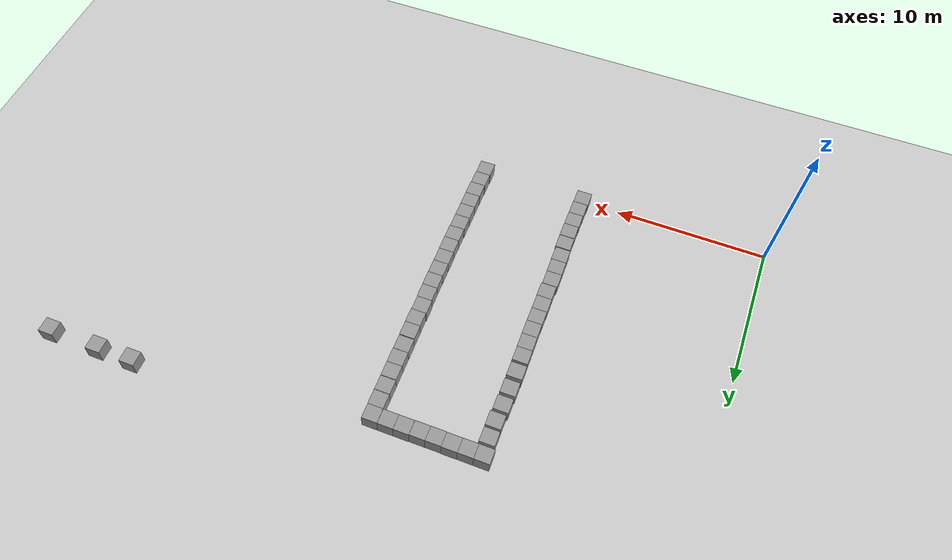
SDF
<sdf version="1.4">
 <world name="default">
  <model name="ground_plane">
   <static>1</static>
   <link name="link">
    <collision name="collision">
     <geometry><plane><normal>0 0 1</normal><size>100 100</size></plane></geometry>
     <surface><friction><ode><mu>100</mu><mu2>50</mu2></ode></friction></surface>
    </collision>
    <visual name="visual">
     <cast_shadows>0</cast_shadows>
     <geometry><plane><normal>0 0 1</normal><size>100 100</size></plane></geometry>
     <material>
      <script><uri>file://media/materials/scripts/gazebo.material</uri><name>Gazebo/Grey</name></script>
     </material>
    </visual>
    <velocity_decay><linear>0</linear><angular>0</angular></velocity_decay>
   </link>
  </model>
  <model name="unit_box_2">
   <pose>12.5062 0.446914 0.5 0 0 -0.000451</pose>
   <link name="link">
    <inertial>
     <mass>1</mass>
     <inertia><ixx>1</ixx><ixy>0</ixy><ixz>0</ixz><iyy>1</iyy><iyz>0</iyz><izz>1</izz></inertia>
    </inertial>
    <collision name="collision"><geometry><box><size>1 1 1</size></box></geometry></collision>
    <visual name="visual">
     <geometry><box><size>1 1 1</size></box></geometry>
     <material>
      <script><uri>file://media/materials/scripts/gazebo.material</uri><name>Gazebo/Grey</name></script>
     </material>
    </visual>
    <velocity_decay><linear>0</linear><angular>0</angular></velocity_decay>
   </link>
   <static>0</static>
  </model>
  <model name="unit_box_27">
   <pose>12.4867 20.4985 0.5 0 -0 0.000241</pose>
   <link name="link">
    <inertial>
     <mass>1</mass>
     <inertia><ixx>1</ixx><ixy>0</ixy><ixz>0</ixz><iyy>1</iyy><iyz>0</iyz><izz>1</izz></inertia>
    </inertial>
    <collision name="collision"><geometry><box><size>1 1 1</size></box></geometry></collision>
    <visual name="visual">
     <geometry><box><size>1 1 1</size></box></geometry>
     <material>
      <script><uri>file://media/materials/scripts/gazebo.material</uri><name>Gazebo/Grey</name></script>
     </material>
    </visual>
    <velocity_decay><linear>0</linear><angular>0</angular></velocity_decay>
   </link>
   <static>0</static>
  </model>
  <model name="unit_box_28">
   <pose>19.4998 0.427452 0.5 0 0 -6.1e-05</pose>
   <link name="link">
    <inertial>
     <mass>1</mass>
     <inertia><ixx>1</ixx><ixy>0</ixy><ixz>0</ixz><iyy>1</iyy><iyz>0</iyz><izz>1</izz></inertia>
    </inertial>
    <collision name="collision"><geometry><box><size>1 1 1</size></box></geometry></collision>
    <visual name="visual">
     <geometry><box><size>1 1 1</size></box></geometry>
     <material>
      <script><uri>file://media/materials/scripts/gazebo.material</uri><name>Gazebo/Grey</name></script>
     </material>
    </visual>
    <velocity_decay><linear>0</linear><angular>0</angular></velocity_decay>
   </link>
   <static>0</static>
  </model>
  <model name="unit_box_29">
   <pose>19.5022 20.5077 0.5 0 -0 2.5e-05</pose>
   <link name="link">
    <inertial>
     <mass>1</mass>
     <inertia><ixx>1</ixx><ixy>0</ixy><ixz>0</ixz><iyy>1</iyy><iyz>0</iyz><izz>1</izz></inertia>
    </inertial>
    <collision name="collision"><geometry><box><size>1 1 1</size></box></geometry></collision>
    <visual name="visual">
     <geometry><box><size>1 1 1</size></box></geometry>
     <material>
      <script><uri>file://media/materials/scripts/gazebo.material</uri><name>Gazebo/Grey</name></script>
     </material>
    </visual>
    <velocity_decay><linear>0</linear><angular>0</angular></velocity_decay>
   </link>
   <static>0</static>
  </model>
  <model name="unit_box_30">
   <pose>12.5309 1.44691 0.5 0 0 -0.00045</pose>
   <link name="link">
    <inertial>
     <mass>1</mass>
     <inertia><ixx>1</ixx><ixy>0</ixy><ixz>0</ixz><iyy>1</iyy><iyz>0</iyz><izz>1</izz></inertia>
    </inertial>
    <collision name="collision"><geometry><box><size>1 1 1</size></box></geometry></collision>
    <visual name="visual">
     <geometry><box><size>1 1 1</size></box></geometry>
     <material>
      <script><uri>file://media/materials/scripts/gazebo.material</uri><name>Gazebo/Grey</name></script>
     </material>
    </visual>
    <velocity_decay><linear>0</linear><angular>0</angular></velocity_decay>
   </link>
   <static>0</static>
  </model>
  <model name="unit_box_31">
   <pose>12.543 2.44871 0.5 0 -0 8e-06</pose>
   <link name="link">
    <inertial>
     <mass>1</mass>
     <inertia><ixx>1</ixx><ixy>0</ixy><ixz>0</ixz><iyy>1</iyy><iyz>0</iyz><izz>1</izz></inertia>
    </inertial>
    <collision name="collision"><geometry><box><size>1 1 1</size></box></geometry></collision>
    <visual name="visual">
     <geometry><box><size>1 1 1</size></box></geometry>
     <material>
      <script><uri>file://media/materials/scripts/gazebo.material</uri><name>Gazebo/Grey</name></script>
     </material>
    </visual>
    <velocity_decay><linear>0</linear><angular>0</angular></velocity_decay>
   </link>
   <static>0</static>
  </model>
  <model name="unit_box_32">
   <pose>12.5574 3.44871 0.5 0 -0 5e-06</pose>
   <link name="link">
    <inertial>
     <mass>1</mass>
     <inertia><ixx>1</ixx><ixy>0</ixy><ixz>0</ixz><iyy>1</iyy><iyz>0</iyz><izz>1</izz></inertia>
    </inertial>
    <collision name="collision"><geometry><box><size>1 1 1</size></box></geometry></collision>
    <visual name="visual">
     <geometry><box><size>1 1 1</size></box></geometry>
     <material>
      <script><uri>file://media/materials/scripts/gazebo.material</uri><name>Gazebo/Grey</name></script>
     </material>
    </visual>
    <velocity_decay><linear>0</linear><angular>0</angular></velocity_decay>
   </link>
   <static>0</static>
  </model>
  <model name="unit_box_33">
   <pose>12.5538 4.46862 0.5 0 -0 6e-06</pose>
   <link name="link">
    <inertial>
     <mass>1</mass>
     <inertia><ixx>1</ixx><ixy>0</ixy><ixz>0</ixz><iyy>1</iyy><iyz>0</iyz><izz>1</izz></inertia>
    </inertial>
    <collision name="collision"><geometry><box><size>1 1 1</size></box></geometry></collision>
    <visual name="visual">
     <geometry><box><size>1 1 1</size></box></geometry>
     <material>
      <script><uri>file://media/materials/scripts/gazebo.material</uri><name>Gazebo/Grey</name></script>
     </material>
    </visual>
    <velocity_decay><linear>0</linear><angular>0</angular></velocity_decay>
   </link>
   <static>0</static>
  </model>
  <model name="unit_box_34">
   <pose>12.5053 5.51432 0.5 0 -0 0.000187</pose>
   <link name="link">
    <inertial>
     <mass>1</mass>
     <inertia><ixx>1</ixx><ixy>0</ixy><ixz>0</ixz><iyy>1</iyy><iyz>0</iyz><izz>1</izz></inertia>
    </inertial>
    <collision name="collision"><geometry><box><size>1 1 1</size></box></geometry></collision>
    <visual name="visual">
     <geometry><box><size>1 1 1</size></box></geometry>
     <material>
      <script><uri>file://media/materials/scripts/gazebo.material</uri><name>Gazebo/Grey</name></script>
     </material>
    </visual>
    <velocity_decay><linear>0</linear><angular>0</angular></velocity_decay>
   </link>
   <static>0</static>
  </model>
  <model name="unit_box_35">
   <pose>12.4918 6.51502 0.5 0 -0 0.00017</pose>
   <link name="link">
    <inertial>
     <mass>1</mass>
     <inertia><ixx>1</ixx><ixy>0</ixy><ixz>0</ixz><iyy>1</iyy><iyz>0</iyz><izz>1</izz></inertia>
    </inertial>
    <collision name="collision"><geometry><box><size>1 1 1</size></box></geometry></collision>
    <visual name="visual">
     <geometry><box><size>1 1 1</size></box></geometry>
     <material>
      <script><uri>file://media/materials/scripts/gazebo.material</uri><name>Gazebo/Grey</name></script>
     </material>
    </visual>
    <velocity_decay><linear>0</linear><angular>0</angular></velocity_decay>
   </link>
   <static>0</static>
  </model>
  <model name="unit_box_36">
   <pose>12.4784 7.5163 0.5 0 -0 7.4e-05</pose>
   <link name="link">
    <inertial>
     <mass>1</mass>
     <inertia><ixx>1</ixx><ixy>0</ixy><ixz>0</ixz><iyy>1</iyy><iyz>0</iyz><izz>1</izz></inertia>
    </inertial>
    <collision name="collision"><geometry><box><size>1 1 1</size></box></geometry></collision>
    <visual name="visual">
     <geometry><box><size>1 1 1</size></box></geometry>
     <material>
      <script><uri>file://media/materials/scripts/gazebo.material</uri><name>Gazebo/Grey</name></script>
     </material>
    </visual>
    <velocity_decay><linear>0</linear><angular>0</angular></velocity_decay>
   </link>
   <static>0</static>
  </model>
  <model name="unit_box_37">
   <pose>12.5302 8.53127 0.5 0 -0 0.000439</pose>
   <link name="link">
    <inertial>
     <mass>1</mass>
     <inertia><ixx>1</ixx><ixy>0</ixy><ixz>0</ixz><iyy>1</iyy><iyz>0</iyz><izz>1</izz></inertia>
    </inertial>
    <collision name="collision"><geometry><box><size>1 1 1</size></box></geometry></collision>
    <visual name="visual">
     <geometry><box><size>1 1 1</size></box></geometry>
     <material>
      <script><uri>file://media/materials/scripts/gazebo.material</uri><name>Gazebo/Grey</name></script>
     </material>
    </visual>
    <velocity_decay><linear>0</linear><angular>0</angular></velocity_decay>
   </link>
   <static>0</static>
  </model>
  <model name="unit_box_38">
   <pose>12.5171 9.53128 0.5 0 -0 0.000436</pose>
   <link name="link">
    <inertial>
     <mass>1</mass>
     <inertia><ixx>1</ixx><ixy>0</ixy><ixz>0</ixz><iyy>1</iyy><iyz>0</iyz><izz>1</izz></inertia>
    </inertial>
    <collision name="collision"><geometry><box><size>1 1 1</size></box></geometry></collision>
    <visual name="visual">
     <geometry><box><size>1 1 1</size></box></geometry>
     <material>
      <script><uri>file://media/materials/scripts/gazebo.material</uri><name>Gazebo/Grey</name></script>
     </material>
    </visual>
    <velocity_decay><linear>0</linear><angular>0</angular></velocity_decay>
   </link>
   <static>0</static>
  </model>
  <model name="unit_box_39">
   <pose>12.5257 10.5313 0.5 0 -0 0.000397</pose>
   <link name="link">
    <inertial>
     <mass>1</mass>
     <inertia><ixx>1</ixx><ixy>0</ixy><ixz>0</ixz><iyy>1</iyy><iyz>0</iyz><izz>1</izz></inertia>
    </inertial>
    <collision name="collision"><geometry><box><size>1 1 1</size></box></geometry></collision>
    <visual name="visual">
     <geometry><box><size>1 1 1</size></box></geometry>
     <material>
      <script><uri>file://media/materials/scripts/gazebo.material</uri><name>Gazebo/Grey</name></script>
     </material>
    </visual>
    <velocity_decay><linear>0</linear><angular>0</angular></velocity_decay>
   </link>
   <static>0</static>
  </model>
  <model name="unit_box_40">
   <pose>12.5333 11.5313 0.5 0 -0 0.000398</pose>
   <link name="link">
    <inertial>
     <mass>1</mass>
     <inertia><ixx>1</ixx><ixy>0</ixy><ixz>0</ixz><iyy>1</iyy><iyz>0</iyz><izz>1</izz></inertia>
    </inertial>
    <collision name="collision"><geometry><box><size>1 1 1</size></box></geometry></collision>
    <visual name="visual">
     <geometry><box><size>1 1 1</size></box></geometry>
     <material>
      <script><uri>file://media/materials/scripts/gazebo.material</uri><name>Gazebo/Grey</name></script>
     </material>
    </visual>
    <velocity_decay><linear>0</linear><angular>0</angular></velocity_decay>
   </link>
   <static>0</static>
  </model>
  <model name="unit_box_41">
   <pose>12.5184 12.5313 0.5 0 -0 0.000369</pose>
   <link name="link">
    <inertial>
     <mass>1</mass>
     <inertia><ixx>1</ixx><ixy>0</ixy><ixz>0</ixz><iyy>1</iyy><iyz>0</iyz><izz>1</izz></inertia>
    </inertial>
    <collision name="collision"><geometry><box><size>1 1 1</size></box></geometry></collision>
    <visual name="visual">
     <geometry><box><size>1 1 1</size></box></geometry>
     <material>
      <script><uri>file://media/materials/scripts/gazebo.material</uri><name>Gazebo/Grey</name></script>
     </material>
    </visual>
    <velocity_decay><linear>0</linear><angular>0</angular></velocity_decay>
   </link>
   <static>0</static>
  </model>
  <model name="unit_box_42">
   <pose>12.5039 13.5313 0.5 0 -0 0.000354</pose>
   <link name="link">
    <inertial>
     <mass>1</mass>
     <inertia><ixx>1</ixx><ixy>0</ixy><ixz>0</ixz><iyy>1</iyy><iyz>0</iyz><izz>1</izz></inertia>
    </inertial>
    <collision name="collision"><geometry><box><size>1 1 1</size></box></geometry></collision>
    <visual name="visual">
     <geometry><box><size>1 1 1</size></box></geometry>
     <material>
      <script><uri>file://media/materials/scripts/gazebo.material</uri><name>Gazebo/Grey</name></script>
     </material>
    </visual>
    <velocity_decay><linear>0</linear><angular>0</angular></velocity_decay>
   </link>
   <static>0</static>
  </model>
  <model name="unit_box_43">
   <pose>12.488 14.6714 0.5 0 -0 0.000276</pose>
   <link name="link">
    <inertial>
     <mass>1</mass>
     <inertia><ixx>1</ixx><ixy>0</ixy><ixz>0</ixz><iyy>1</iyy><iyz>0</iyz><izz>1</izz></inertia>
    </inertial>
    <collision name="collision"><geometry><box><size>1 1 1</size></box></geometry></collision>
    <visual name="visual">
     <geometry><box><size>1 1 1</size></box></geometry>
     <material>
      <script><uri>file://media/materials/scripts/gazebo.material</uri><name>Gazebo/Grey</name></script>
     </material>
    </visual>
    <velocity_decay><linear>0</linear><angular>0</angular></velocity_decay>
   </link>
   <static>0</static>
  </model>
  <model name="unit_box_44">
   <pose>12.4951 15.89 0.5 0 -0 0.000272</pose>
   <link name="link">
    <inertial>
     <mass>1</mass>
     <inertia><ixx>1</ixx><ixy>0</ixy><ixz>0</ixz><iyy>1</iyy><iyz>0</iyz><izz>1</izz></inertia>
    </inertial>
    <collision name="collision"><geometry><box><size>1 1 1</size></box></geometry></collision>
    <visual name="visual">
     <geometry><box><size>1 1 1</size></box></geometry>
     <material>
      <script><uri>file://media/materials/scripts/gazebo.material</uri><name>Gazebo/Grey</name></script>
     </material>
    </visual>
    <velocity_decay><linear>0</linear><angular>0</angular></velocity_decay>
   </link>
   <static>0</static>
  </model>
  <model name="unit_box_45">
   <pose>12.5264 17.0697 0.5 0 -0 0.000256</pose>
   <link name="link">
    <inertial>
     <mass>1</mass>
     <inertia><ixx>1</ixx><ixy>0</ixy><ixz>0</ixz><iyy>1</iyy><iyz>0</iyz><izz>1</izz></inertia>
    </inertial>
    <collision name="collision"><geometry><box><size>1 1 1</size></box></geometry></collision>
    <visual name="visual">
     <geometry><box><size>1 1 1</size></box></geometry>
     <material>
      <script><uri>file://media/materials/scripts/gazebo.material</uri><name>Gazebo/Grey</name></script>
     </material>
    </visual>
    <velocity_decay><linear>0</linear><angular>0</angular></velocity_decay>
   </link>
   <static>0</static>
  </model>
  <model name="unit_box_46">
   <pose>12.601 18.2279 0.5 0 -0 0.00025</pose>
   <link name="link">
    <inertial>
     <mass>1</mass>
     <inertia><ixx>1</ixx><ixy>0</ixy><ixz>0</ixz><iyy>1</iyy><iyz>0</iyz><izz>1</izz></inertia>
    </inertial>
    <collision name="collision"><geometry><box><size>1 1 1</size></box></geometry></collision>
    <visual name="visual">
     <geometry><box><size>1 1 1</size></box></geometry>
     <material>
      <script><uri>file://media/materials/scripts/gazebo.material</uri><name>Gazebo/Grey</name></script>
     </material>
    </visual>
    <velocity_decay><linear>0</linear><angular>0</angular></velocity_decay>
   </link>
   <static>0</static>
  </model>
  <model name="unit_box_47">
   <pose>12.5881 19.348 0.5 0 -0 0.000217</pose>
   <link name="link">
    <inertial>
     <mass>1</mass>
     <inertia><ixx>1</ixx><ixy>0</ixy><ixz>0</ixz><iyy>1</iyy><iyz>0</iyz><izz>1</izz></inertia>
    </inertial>
    <collision name="collision"><geometry><box><size>1 1 1</size></box></geometry></collision>
    <visual name="visual">
     <geometry><box><size>1 1 1</size></box></geometry>
     <material>
      <script><uri>file://media/materials/scripts/gazebo.material</uri><name>Gazebo/Grey</name></script>
     </material>
    </visual>
    <velocity_decay><linear>0</linear><angular>0</angular></velocity_decay>
   </link>
   <static>0</static>
  </model>
  <model name="unit_box_49">
   <pose>13.4871 20.4955 0.5 0 -0 -0.000126</pose>
   <link name="link">
    <inertial>
     <mass>1</mass>
     <inertia><ixx>1</ixx><ixy>0</ixy><ixz>0</ixz><iyy>1</iyy><iyz>0</iyz><izz>1</izz></inertia>
    </inertial>
    <collision name="collision"><geometry><box><size>1 1 1</size></box></geometry></collision>
    <visual name="visual">
     <geometry><box><size>1 1 1</size></box></geometry>
     <material>
      <script><uri>file://media/materials/scripts/gazebo.material</uri><name>Gazebo/Grey</name></script>
     </material>
    </visual>
    <velocity_decay><linear>0</linear><angular>0</angular></velocity_decay>
   </link>
   <static>0</static>
  </model>
  <model name="unit_box_50">
   <pose>14.4871 20.5036 0.5 -0 -0 -0.000149</pose>
   <link name="link">
    <inertial>
     <mass>1</mass>
     <inertia><ixx>1</ixx><ixy>0</ixy><ixz>0</ixz><iyy>1</iyy><iyz>0</iyz><izz>1</izz></inertia>
    </inertial>
    <collision name="collision"><geometry><box><size>1 1 1</size></box></geometry></collision>
    <visual name="visual">
     <geometry><box><size>1 1 1</size></box></geometry>
     <material>
      <script><uri>file://media/materials/scripts/gazebo.material</uri><name>Gazebo/Grey</name></script>
     </material>
    </visual>
    <velocity_decay><linear>0</linear><angular>0</angular></velocity_decay>
   </link>
   <static>0</static>
  </model>
  <model name="unit_box_51">
   <pose>15.4871 20.4852 0.5 0 0 -0.000205</pose>
   <link name="link">
    <inertial>
     <mass>1</mass>
     <inertia><ixx>1</ixx><ixy>0</ixy><ixz>0</ixz><iyy>1</iyy><iyz>0</iyz><izz>1</izz></inertia>
    </inertial>
    <collision name="collision"><geometry><box><size>1 1 1</size></box></geometry></collision>
    <visual name="visual">
     <geometry><box><size>1 1 1</size></box></geometry>
     <material>
      <script><uri>file://media/materials/scripts/gazebo.material</uri><name>Gazebo/Grey</name></script>
     </material>
    </visual>
    <velocity_decay><linear>0</linear><angular>0</angular></velocity_decay>
   </link>
   <static>0</static>
  </model>
  <model name="unit_box_52">
   <pose>16.4873 20.4903 0.5 -0 -0 -0.000244</pose>
   <link name="link">
    <inertial>
     <mass>1</mass>
     <inertia><ixx>1</ixx><ixy>0</ixy><ixz>0</ixz><iyy>1</iyy><iyz>0</iyz><izz>1</izz></inertia>
    </inertial>
    <collision name="collision"><geometry><box><size>1 1 1</size></box></geometry></collision>
    <visual name="visual">
     <geometry><box><size>1 1 1</size></box></geometry>
     <material>
      <script><uri>file://media/materials/scripts/gazebo.material</uri><name>Gazebo/Grey</name></script>
     </material>
    </visual>
    <velocity_decay><linear>0</linear><angular>0</angular></velocity_decay>
   </link>
   <static>0</static>
  </model>
  <model name="unit_box_53">
   <pose>17.4923 20.5065 0.5 0 -0 9.2e-05</pose>
   <link name="link">
    <inertial>
     <mass>1</mass>
     <inertia><ixx>1</ixx><ixy>0</ixy><ixz>0</ixz><iyy>1</iyy><iyz>0</iyz><izz>1</izz></inertia>
    </inertial>
    <collision name="collision"><geometry><box><size>1 1 1</size></box></geometry></collision>
    <visual name="visual">
     <geometry><box><size>1 1 1</size></box></geometry>
     <material>
      <script><uri>file://media/materials/scripts/gazebo.material</uri><name>Gazebo/Grey</name></script>
     </material>
    </visual>
    <velocity_decay><linear>0</linear><angular>0</angular></velocity_decay>
   </link>
   <static>0</static>
  </model>
  <model name="unit_box_54">
   <pose>18.4924 20.5073 0.5 0 -0 9.3e-05</pose>
   <link name="link">
    <inertial>
     <mass>1</mass>
     <inertia><ixx>1</ixx><ixy>0</ixy><ixz>0</ixz><iyy>1</iyy><iyz>0</iyz><izz>1</izz></inertia>
    </inertial>
    <collision name="collision"><geometry><box><size>1 1 1</size></box></geometry></collision>
    <visual name="visual">
     <geometry><box><size>1 1 1</size></box></geometry>
     <material>
      <script><uri>file://media/materials/scripts/gazebo.material</uri><name>Gazebo/Grey</name></script>
     </material>
    </visual>
    <velocity_decay><linear>0</linear><angular>0</angular></velocity_decay>
   </link>
   <static>0</static>
  </model>
  <model name="unit_box_55">
   <pose>19.5184 19.5076 0.5 0 -0 2.5e-05</pose>
   <link name="link">
    <inertial>
     <mass>1</mass>
     <inertia><ixx>1</ixx><ixy>0</ixy><ixz>0</ixz><iyy>1</iyy><iyz>0</iyz><izz>1</izz></inertia>
    </inertial>
    <collision name="collision"><geometry><box><size>1 1 1</size></box></geometry></collision>
    <visual name="visual">
     <geometry><box><size>1 1 1</size></box></geometry>
     <material>
      <script><uri>file://media/materials/scripts/gazebo.material</uri><name>Gazebo/Grey</name></script>
     </material>
    </visual>
    <velocity_decay><linear>0</linear><angular>0</angular></velocity_decay>
   </link>
   <static>0</static>
  </model>
  <model name="unit_box_56">
   <pose>19.5187 18.4944 0.5 0 -0 0</pose>
   <link name="link">
    <inertial>
     <mass>1</mass>
     <inertia><ixx>1</ixx><ixy>0</ixy><ixz>0</ixz><iyy>1</iyy><iyz>0</iyz><izz>1</izz></inertia>
    </inertial>
    <collision name="collision"><geometry><box><size>1 1 1</size></box></geometry></collision>
    <visual name="visual">
     <geometry><box><size>1 1 1</size></box></geometry>
     <material>
      <script><uri>file://media/materials/scripts/gazebo.material</uri><name>Gazebo/Grey</name></script>
     </material>
    </visual>
    <velocity_decay><linear>0</linear><angular>0</angular></velocity_decay>
   </link>
   <static>0</static>
  </model>
  <model name="unit_box_57">
   <pose>19.5284 17.4709 0.5 0 -0 2.2e-05</pose>
   <link name="link">
    <inertial>
     <mass>1</mass>
     <inertia><ixx>1</ixx><ixy>0</ixy><ixz>0</ixz><iyy>1</iyy><iyz>0</iyz><izz>1</izz></inertia>
    </inertial>
    <collision name="collision"><geometry><box><size>1 1 1</size></box></geometry></collision>
    <visual name="visual">
     <geometry><box><size>1 1 1</size></box></geometry>
     <material>
      <script><uri>file://media/materials/scripts/gazebo.material</uri><name>Gazebo/Grey</name></script>
     </material>
    </visual>
    <velocity_decay><linear>0</linear><angular>0</angular></velocity_decay>
   </link>
   <static>0</static>
  </model>
  <model name="unit_box_58">
   <pose>19.5376 16.4709 0.5 0 -0 2.2e-05</pose>
   <link name="link">
    <inertial>
     <mass>1</mass>
     <inertia><ixx>1</ixx><ixy>0</ixy><ixz>0</ixz><iyy>1</iyy><iyz>0</iyz><izz>1</izz></inertia>
    </inertial>
    <collision name="collision"><geometry><box><size>1 1 1</size></box></geometry></collision>
    <visual name="visual">
     <geometry><box><size>1 1 1</size></box></geometry>
     <material>
      <script><uri>file://media/materials/scripts/gazebo.material</uri><name>Gazebo/Grey</name></script>
     </material>
    </visual>
    <velocity_decay><linear>0</linear><angular>0</angular></velocity_decay>
   </link>
   <static>0</static>
  </model>
  <model name="unit_box_59">
   <pose>19.5376 15.4691 0.5 0 -0 0</pose>
   <link name="link">
    <inertial>
     <mass>1</mass>
     <inertia><ixx>1</ixx><ixy>0</ixy><ixz>0</ixz><iyy>1</iyy><iyz>0</iyz><izz>1</izz></inertia>
    </inertial>
    <collision name="collision"><geometry><box><size>1 1 1</size></box></geometry></collision>
    <visual name="visual">
     <geometry><box><size>1 1 1</size></box></geometry>
     <material>
      <script><uri>file://media/materials/scripts/gazebo.material</uri><name>Gazebo/Grey</name></script>
     </material>
    </visual>
    <velocity_decay><linear>0</linear><angular>0</angular></velocity_decay>
   </link>
   <static>0</static>
  </model>
  <model name="unit_box_60">
   <pose>19.5533 14.4278 0.5 0 -0 0.000148</pose>
   <link name="link">
    <inertial>
     <mass>1</mass>
     <inertia><ixx>1</ixx><ixy>0</ixy><ixz>0</ixz><iyy>1</iyy><iyz>0</iyz><izz>1</izz></inertia>
    </inertial>
    <collision name="collision"><geometry><box><size>1 1 1</size></box></geometry></collision>
    <visual name="visual">
     <geometry><box><size>1 1 1</size></box></geometry>
     <material>
      <script><uri>file://media/materials/scripts/gazebo.material</uri><name>Gazebo/Grey</name></script>
     </material>
    </visual>
    <velocity_decay><linear>0</linear><angular>0</angular></velocity_decay>
   </link>
   <static>0</static>
  </model>
  <model name="unit_box_61">
   <pose>19.5634 13.4278 0.5 0 -0 0.000153</pose>
   <link name="link">
    <inertial>
     <mass>1</mass>
     <inertia><ixx>1</ixx><ixy>0</ixy><ixz>0</ixz><iyy>1</iyy><iyz>0</iyz><izz>1</izz></inertia>
    </inertial>
    <collision name="collision"><geometry><box><size>1 1 1</size></box></geometry></collision>
    <visual name="visual">
     <geometry><box><size>1 1 1</size></box></geometry>
     <material>
      <script><uri>file://media/materials/scripts/gazebo.material</uri><name>Gazebo/Grey</name></script>
     </material>
    </visual>
    <velocity_decay><linear>0</linear><angular>0</angular></velocity_decay>
   </link>
   <static>0</static>
  </model>
  <model name="unit_box_62">
   <pose>19.5357 12.4278 0.5 0 -0 0.000154</pose>
   <link name="link">
    <inertial>
     <mass>1</mass>
     <inertia><ixx>1</ixx><ixy>0</ixy><ixz>0</ixz><iyy>1</iyy><iyz>0</iyz><izz>1</izz></inertia>
    </inertial>
    <collision name="collision"><geometry><box><size>1 1 1</size></box></geometry></collision>
    <visual name="visual">
     <geometry><box><size>1 1 1</size></box></geometry>
     <material>
      <script><uri>file://media/materials/scripts/gazebo.material</uri><name>Gazebo/Grey</name></script>
     </material>
    </visual>
    <velocity_decay><linear>0</linear><angular>0</angular></velocity_decay>
   </link>
   <static>0</static>
  </model>
  <model name="unit_box_63">
   <pose>19.5713 11.4278 0.5 0 -0 0.000154</pose>
   <link name="link">
    <inertial>
     <mass>1</mass>
     <inertia><ixx>1</ixx><ixy>0</ixy><ixz>0</ixz><iyy>1</iyy><iyz>0</iyz><izz>1</izz></inertia>
    </inertial>
    <collision name="collision"><geometry><box><size>1 1 1</size></box></geometry></collision>
    <visual name="visual">
     <geometry><box><size>1 1 1</size></box></geometry>
     <material>
      <script><uri>file://media/materials/scripts/gazebo.material</uri><name>Gazebo/Grey</name></script>
     </material>
    </visual>
    <velocity_decay><linear>0</linear><angular>0</angular></velocity_decay>
   </link>
   <static>0</static>
  </model>
  <model name="unit_box_64">
   <pose>19.583 10.4278 0.5 0 -0 0.000159</pose>
   <link name="link">
    <inertial>
     <mass>1</mass>
     <inertia><ixx>1</ixx><ixy>0</ixy><ixz>0</ixz><iyy>1</iyy><iyz>0</iyz><izz>1</izz></inertia>
    </inertial>
    <collision name="collision"><geometry><box><size>1 1 1</size></box></geometry></collision>
    <visual name="visual">
     <geometry><box><size>1 1 1</size></box></geometry>
     <material>
      <script><uri>file://media/materials/scripts/gazebo.material</uri><name>Gazebo/Grey</name></script>
     </material>
    </visual>
    <velocity_decay><linear>0</linear><angular>0</angular></velocity_decay>
   </link>
   <static>0</static>
  </model>
  <model name="unit_box_65">
   <pose>19.5789 9.42774 0.5 0 -0 0.000185</pose>
   <link name="link">
    <inertial>
     <mass>1</mass>
     <inertia><ixx>1</ixx><ixy>0</ixy><ixz>0</ixz><iyy>1</iyy><iyz>0</iyz><izz>1</izz></inertia>
    </inertial>
    <collision name="collision"><geometry><box><size>1 1 1</size></box></geometry></collision>
    <visual name="visual">
     <geometry><box><size>1 1 1</size></box></geometry>
     <material>
      <script><uri>file://media/materials/scripts/gazebo.material</uri><name>Gazebo/Grey</name></script>
     </material>
    </visual>
    <velocity_decay><linear>0</linear><angular>0</angular></velocity_decay>
   </link>
   <static>0</static>
  </model>
  <model name="unit_box_66">
   <pose>19.5735 8.42773 0.5 0 -0 0.0002</pose>
   <link name="link">
    <inertial>
     <mass>1</mass>
     <inertia><ixx>1</ixx><ixy>0</ixy><ixz>0</ixz><iyy>1</iyy><iyz>0</iyz><izz>1</izz></inertia>
    </inertial>
    <collision name="collision"><geometry><box><size>1 1 1</size></box></geometry></collision>
    <visual name="visual">
     <geometry><box><size>1 1 1</size></box></geometry>
     <material>
      <script><uri>file://media/materials/scripts/gazebo.material</uri><name>Gazebo/Grey</name></script>
     </material>
    </visual>
    <velocity_decay><linear>0</linear><angular>0</angular></velocity_decay>
   </link>
   <static>0</static>
  </model>
  <model name="unit_box_67">
   <pose>19.5864 7.42772 0.5 0 -0 0.000225</pose>
   <link name="link">
    <inertial>
     <mass>1</mass>
     <inertia><ixx>1</ixx><ixy>0</ixy><ixz>0</ixz><iyy>1</iyy><iyz>0</iyz><izz>1</izz></inertia>
    </inertial>
    <collision name="collision"><geometry><box><size>1 1 1</size></box></geometry></collision>
    <visual name="visual">
     <geometry><box><size>1 1 1</size></box></geometry>
     <material>
      <script><uri>file://media/materials/scripts/gazebo.material</uri><name>Gazebo/Grey</name></script>
     </material>
    </visual>
    <velocity_decay><linear>0</linear><angular>0</angular></velocity_decay>
   </link>
   <static>0</static>
  </model>
  <model name="unit_box_68">
   <pose>19.5816 6.42771 0.5 0 -0 0.000239</pose>
   <link name="link">
    <inertial>
     <mass>1</mass>
     <inertia><ixx>1</ixx><ixy>0</ixy><ixz>0</ixz><iyy>1</iyy><iyz>0</iyz><izz>1</izz></inertia>
    </inertial>
    <collision name="collision"><geometry><box><size>1 1 1</size></box></geometry></collision>
    <visual name="visual">
     <geometry><box><size>1 1 1</size></box></geometry>
     <material>
      <script><uri>file://media/materials/scripts/gazebo.material</uri><name>Gazebo/Grey</name></script>
     </material>
    </visual>
    <velocity_decay><linear>0</linear><angular>0</angular></velocity_decay>
   </link>
   <static>0</static>
  </model>
  <model name="unit_box_69">
   <pose>19.5608 5.4277 0.5 0 -0 0.000239</pose>
   <link name="link">
    <inertial>
     <mass>1</mass>
     <inertia><ixx>1</ixx><ixy>0</ixy><ixz>0</ixz><iyy>1</iyy><iyz>0</iyz><izz>1</izz></inertia>
    </inertial>
    <collision name="collision"><geometry><box><size>1 1 1</size></box></geometry></collision>
    <visual name="visual">
     <geometry><box><size>1 1 1</size></box></geometry>
     <material>
      <script><uri>file://media/materials/scripts/gazebo.material</uri><name>Gazebo/Grey</name></script>
     </material>
    </visual>
    <velocity_decay><linear>0</linear><angular>0</angular></velocity_decay>
   </link>
   <static>0</static>
  </model>
  <model name="unit_box_70">
   <pose>19.5549 4.4277 0.5 0 -0 0.000243</pose>
   <link name="link">
    <inertial>
     <mass>1</mass>
     <inertia><ixx>1</ixx><ixy>0</ixy><ixz>0</ixz><iyy>1</iyy><iyz>0</iyz><izz>1</izz></inertia>
    </inertial>
    <collision name="collision"><geometry><box><size>1 1 1</size></box></geometry></collision>
    <visual name="visual">
     <geometry><box><size>1 1 1</size></box></geometry>
     <material>
      <script><uri>file://media/materials/scripts/gazebo.material</uri><name>Gazebo/Grey</name></script>
     </material>
    </visual>
    <velocity_decay><linear>0</linear><angular>0</angular></velocity_decay>
   </link>
   <static>0</static>
  </model>
  <model name="unit_box_71">
   <pose>19.5538 3.42769 0.5 0 -0 0.000254</pose>
   <link name="link">
    <inertial>
     <mass>1</mass>
     <inertia><ixx>1</ixx><ixy>0</ixy><ixz>0</ixz><iyy>1</iyy><iyz>0</iyz><izz>1</izz></inertia>
    </inertial>
    <collision name="collision"><geometry><box><size>1 1 1</size></box></geometry></collision>
    <visual name="visual">
     <geometry><box><size>1 1 1</size></box></geometry>
     <material>
      <script><uri>file://media/materials/scripts/gazebo.material</uri><name>Gazebo/Grey</name></script>
     </material>
    </visual>
    <velocity_decay><linear>0</linear><angular>0</angular></velocity_decay>
   </link>
   <static>0</static>
  </model>
  <model name="unit_box_72">
   <pose>19.5506 2.42769 0.5 0 -0 0.000256</pose>
   <link name="link">
    <inertial>
     <mass>1</mass>
     <inertia><ixx>1</ixx><ixy>0</ixy><ixz>0</ixz><iyy>1</iyy><iyz>0</iyz><izz>1</izz></inertia>
    </inertial>
    <collision name="collision"><geometry><box><size>1 1 1</size></box></geometry></collision>
    <visual name="visual">
     <geometry><box><size>1 1 1</size></box></geometry>
     <material>
      <script><uri>file://media/materials/scripts/gazebo.material</uri><name>Gazebo/Grey</name></script>
     </material>
    </visual>
    <velocity_decay><linear>0</linear><angular>0</angular></velocity_decay>
   </link>
   <static>0</static>
  </model>
  <model name="unit_box_73">
   <pose>19.5253 1.42752 0.5 -0 -0 -4.5e-05</pose>
   <link name="link">
    <inertial>
     <mass>1</mass>
     <inertia><ixx>1</ixx><ixy>0</ixy><ixz>0</ixz><iyy>1</iyy><iyz>0</iyz><izz>1</izz></inertia>
    </inertial>
    <collision name="collision"><geometry><box><size>1 1 1</size></box></geometry></collision>
    <visual name="visual">
     <geometry><box><size>1 1 1</size></box></geometry>
     <material>
      <script><uri>file://media/materials/scripts/gazebo.material</uri><name>Gazebo/Grey</name></script>
     </material>
    </visual>
    <velocity_decay><linear>0</linear><angular>0</angular></velocity_decay>
   </link>
   <static>0</static>
  </model>
  <model name="unit_box_99">
   <pose>40.5004 22.501 0.5 0 -0 0</pose>
   <link name="link">
    <inertial>
     <mass>1</mass>
     <inertia><ixx>1</ixx><ixy>0</ixy><ixz>0</ixz><iyy>1</iyy><iyz>0</iyz><izz>1</izz></inertia>
    </inertial>
    <collision name="collision"><geometry><box><size>1 1 1</size></box></geometry></collision>
    <visual name="visual">
     <geometry><box><size>1 1 1</size></box></geometry>
     <material>
      <script><uri>file://media/materials/scripts/gazebo.material</uri><name>Gazebo/Grey</name></script>
     </material>
    </visual>
    <velocity_decay><linear>0</linear><angular>0</angular></velocity_decay>
   </link>
   <static>0</static>
  </model>
  <model name="unit_box_102">
   <pose>37.1412 22.4998 0.5 0 -0 0</pose>
   <link name="link">
    <inertial>
     <mass>1</mass>
     <inertia><ixx>1</ixx><ixy>0</ixy><ixz>0</ixz><iyy>1</iyy><iyz>0</iyz><izz>1</izz></inertia>
    </inertial>
    <collision name="collision"><geometry><box><size>1 1 1</size></box></geometry></collision>
    <visual name="visual">
     <geometry><box><size>1 1 1</size></box></geometry>
     <material>
      <script><uri>file://media/materials/scripts/gazebo.material</uri><name>Gazebo/Grey</name></script>
     </material>
    </visual>
    <velocity_decay><linear>0</linear><angular>0</angular></velocity_decay>
   </link>
   <static>0</static>
  </model>
  <model name="unit_box_104">
   <pose>34.7452 22.5001 0.5 0 -0 0</pose>
   <link name="link">
    <inertial>
     <mass>1</mass>
     <inertia><ixx>1</ixx><ixy>0</ixy><ixz>0</ixz><iyy>1</iyy><iyz>0</iyz><izz>1</izz></inertia>
    </inertial>
    <collision name="collision"><geometry><box><size>1 1 1</size></box></geometry></collision>
    <visual name="visual">
     <geometry><box><size>1 1 1</size></box></geometry>
     <material>
      <script><uri>file://media/materials/scripts/gazebo.material</uri><name>Gazebo/Grey</name></script>
     </material>
    </visual>
    <velocity_decay><linear>0</linear><angular>0</angular></velocity_decay>
   </link>
   <static>0</static>
  </model>
 </world>
</sdf>
